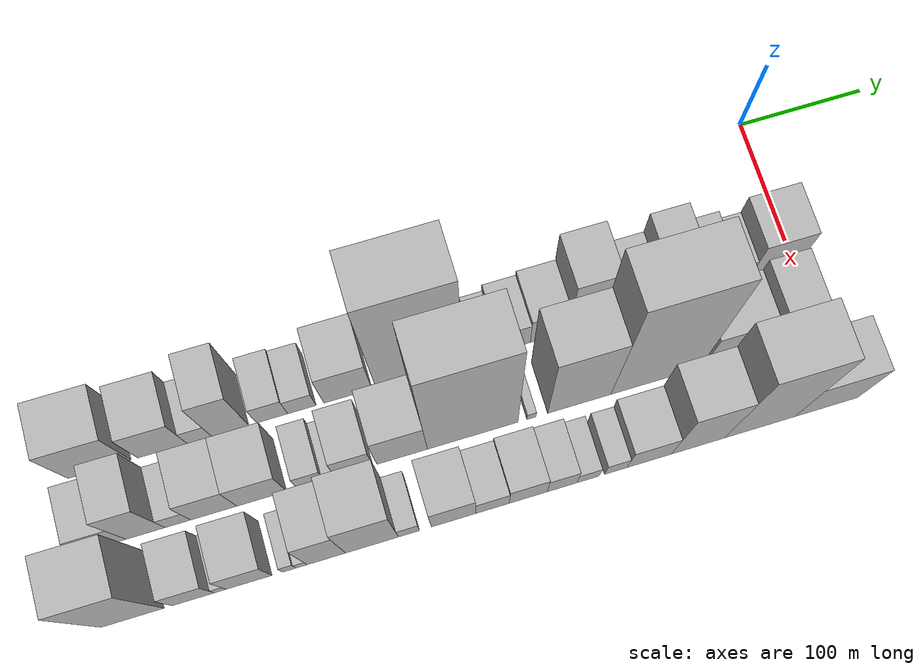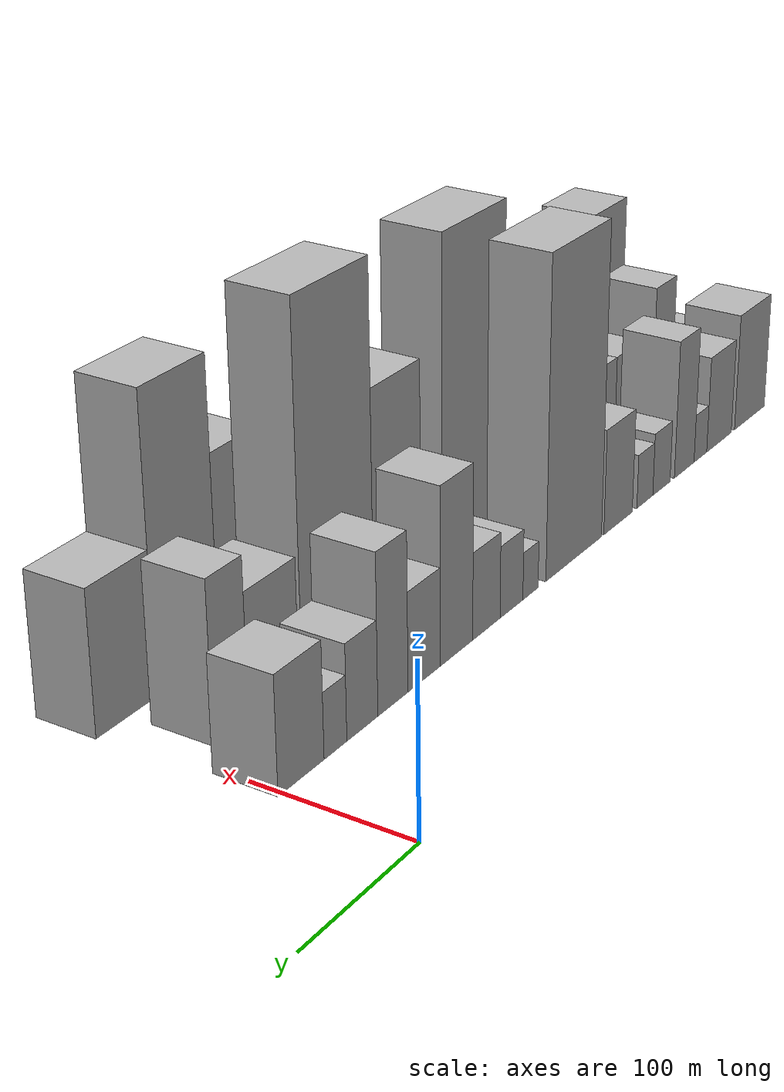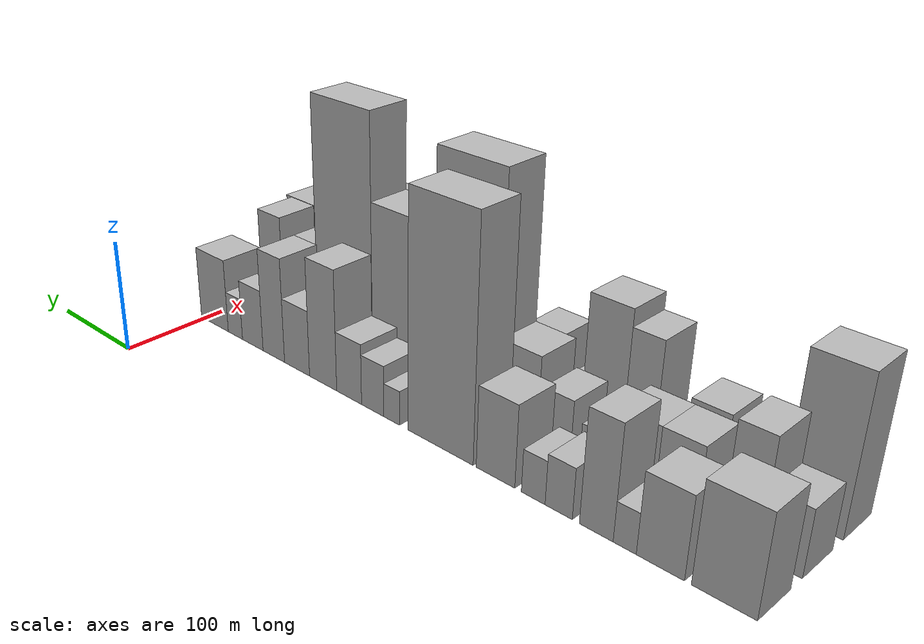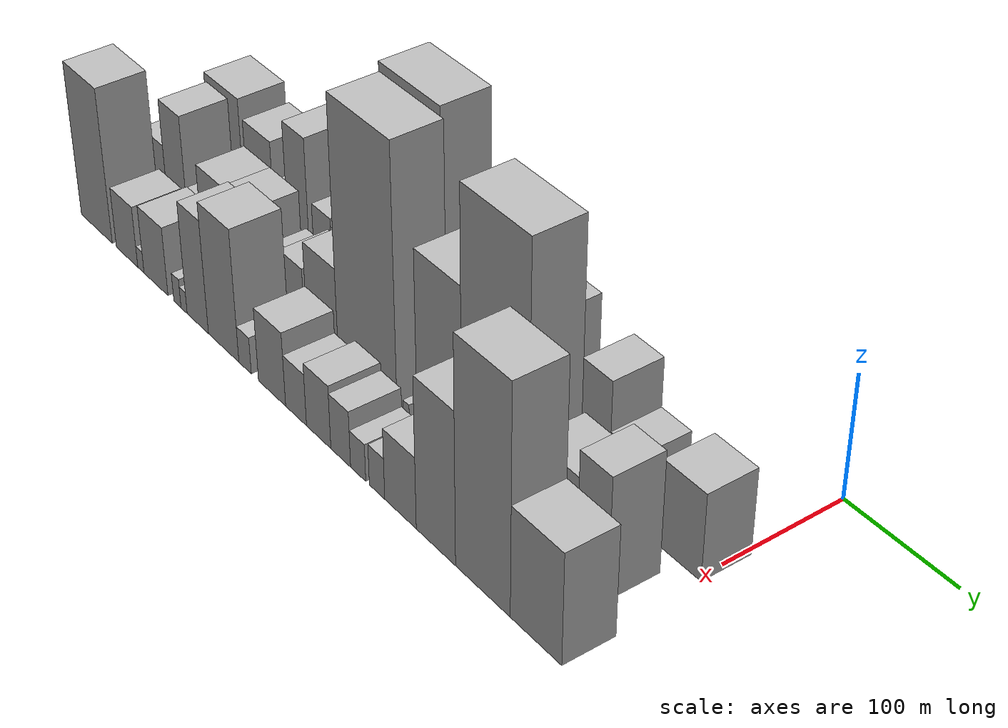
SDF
<sdf version="1.6">
 <world name="default">
  <model name="building_1">
   <static>1</static>
   <pose>100.0000 -536.6929 0 0.000000 0.000000 0.000000</pose>
   <link name="link">
    <pose>0 0 40.50 0 0 0</pose>
    <collision name="collision"><geometry><box><size>40.0000 46.6141 81.0000</size></box></geometry></collision>
    <visual name="visual">
     <cast_shadows>0</cast_shadows>
     <geometry><box><size>40.0000 46.6141 81.0000</size></box></geometry>
     <material>
      <script>
       <uri>model://HANNAS_wall/materials/scripts</uri>
       <uri>model://HANNAS_wall/materials/textures</uri>
       <name>vrc/HANNAS_wall</name>
      </script>
     </material>
    </visual>
   </link>
  </model>
  <model name="building_2">
   <static>1</static>
   <pose>100.0000 -490.0142 0 0.000000 0.000000 0.000000</pose>
   <link name="link">
    <pose>0 0 33.00 0 0 0</pose>
    <collision name="collision"><geometry><box><size>40.0000 36.7435 66.0000</size></box></geometry></collision>
    <visual name="visual">
     <cast_shadows>0</cast_shadows>
     <geometry><box><size>40.0000 36.7435 66.0000</size></box></geometry>
     <material>
      <script>
       <uri>model://HANNAS_wall/materials/scripts</uri>
       <uri>model://HANNAS_wall/materials/textures</uri>
       <name>vrc/HANNAS_wall</name>
      </script>
     </material>
    </visual>
   </link>
  </model>
  <model name="building_3">
   <static>1</static>
   <pose>100.0000 -462.4300 0 0.000000 0.000000 0.000000</pose>
   <link name="link">
    <pose>0 0 16.50 0 0 0</pose>
    <collision name="collision"><geometry><box><size>40.0000 18.4248 33.0000</size></box></geometry></collision>
    <visual name="visual">
     <cast_shadows>0</cast_shadows>
     <geometry><box><size>40.0000 18.4248 33.0000</size></box></geometry>
     <material>
      <script>
       <uri>model://HANNAS_wall/materials/scripts</uri>
       <uri>model://HANNAS_wall/materials/textures</uri>
       <name>vrc/HANNAS_wall</name>
      </script>
     </material>
    </visual>
   </link>
  </model>
  <model name="building_4">
   <static>1</static>
   <pose>100.0000 -439.2274 0 0.000000 0.000000 0.000000</pose>
   <link name="link">
    <pose>0 0 46.50 0 0 0</pose>
    <collision name="collision"><geometry><box><size>40.0000 27.9805 93.0000</size></box></geometry></collision>
    <visual name="visual">
     <cast_shadows>0</cast_shadows>
     <geometry><box><size>40.0000 27.9805 93.0000</size></box></geometry>
     <material>
      <script>
       <uri>model://HANNAS_wall/materials/scripts</uri>
       <uri>model://HANNAS_wall/materials/textures</uri>
       <name>vrc/HANNAS_wall</name>
      </script>
     </material>
    </visual>
   </link>
  </model>
  <model name="building_5">
   <static>1</static>
   <pose>100.0000 -407.3929 0 0.000000 0.000000 0.000000</pose>
   <link name="link">
    <pose>0 0 21.00 0 0 0</pose>
    <collision name="collision"><geometry><box><size>40.0000 23.6884 42.0000</size></box></geometry></collision>
    <visual name="visual">
     <cast_shadows>0</cast_shadows>
     <geometry><box><size>40.0000 23.6884 42.0000</size></box></geometry>
     <material>
      <script>
       <uri>model://HANNAS_wall/materials/scripts</uri>
       <uri>model://HANNAS_wall/materials/textures</uri>
       <name>vrc/HANNAS_wall</name>
      </script>
     </material>
    </visual>
   </link>
  </model>
  <model name="building_6">
   <static>1</static>
   <pose>100.0000 -384.8416 0 0.000000 0.000000 0.000000</pose>
   <link name="link">
    <pose>0 0 18.00 0 0 0</pose>
    <collision name="collision"><geometry><box><size>40.0000 21.4141 36.0000</size></box></geometry></collision>
    <visual name="visual">
     <cast_shadows>0</cast_shadows>
     <geometry><box><size>40.0000 21.4141 36.0000</size></box></geometry>
     <material>
      <script>
       <uri>model://HANNAS_wall/materials/scripts</uri>
       <uri>model://HANNAS_wall/materials/textures</uri>
       <name>vrc/HANNAS_wall</name>
      </script>
     </material>
    </visual>
   </link>
  </model>
  <model name="building_7">
   <static>1</static>
   <pose>100.0000 -349.7798 0 0.000000 0.000000 0.000000</pose>
   <link name="link">
    <pose>0 0 34.50 0 0 0</pose>
    <collision name="collision"><geometry><box><size>40.0000 36.7094 69.0000</size></box></geometry></collision>
    <visual name="visual">
     <cast_shadows>0</cast_shadows>
     <geometry><box><size>40.0000 36.7094 69.0000</size></box></geometry>
     <material>
      <script>
       <uri>model://HANNAS_wall/materials/scripts</uri>
       <uri>model://HANNAS_wall/materials/textures</uri>
       <name>vrc/HANNAS_wall</name>
      </script>
     </material>
    </visual>
   </link>
  </model>
  <model name="building_8">
   <static>1</static>
   <pose>100.0000 -294.7436 0 0.000000 0.000000 0.000000</pose>
   <link name="link">
    <pose>0 0 100.50 0 0 0</pose>
    <collision name="collision"><geometry><box><size>40.0000 67.3630 201.0000</size></box></geometry></collision>
    <visual name="visual">
     <cast_shadows>0</cast_shadows>
     <geometry><box><size>40.0000 67.3630 201.0000</size></box></geometry>
     <material>
      <script>
       <uri>model://HANNAS_wall/materials/scripts</uri>
       <uri>model://HANNAS_wall/materials/textures</uri>
       <name>vrc/HANNAS_wall</name>
      </script>
     </material>
    </visual>
   </link>
  </model>
  <model name="building_9">
   <static>1</static>
   <pose>100.0000 -243.3653 0 0.000000 0.000000 0.000000</pose>
   <link name="link">
    <pose>0 0 15.00 0 0 0</pose>
    <collision name="collision"><geometry><box><size>40.0000 17.3937 30.0000</size></box></geometry></collision>
    <visual name="visual">
     <cast_shadows>0</cast_shadows>
     <geometry><box><size>40.0000 17.3937 30.0000</size></box></geometry>
     <material>
      <script>
       <uri>model://HANNAS_wall/materials/scripts</uri>
       <uri>model://HANNAS_wall/materials/textures</uri>
       <name>vrc/HANNAS_wall</name>
      </script>
     </material>
    </visual>
   </link>
  </model>
  <model name="building_10">
   <static>1</static>
   <pose>100.0000 -221.9480 0 0.000000 0.000000 0.000000</pose>
   <link name="link">
    <pose>0 0 22.50 0 0 0</pose>
    <collision name="collision"><geometry><box><size>40.0000 25.4409 45.0000</size></box></geometry></collision>
    <visual name="visual">
     <cast_shadows>0</cast_shadows>
     <geometry><box><size>40.0000 25.4409 45.0000</size></box></geometry>
     <material>
      <script>
       <uri>model://HANNAS_wall/materials/scripts</uri>
       <uri>model://HANNAS_wall/materials/textures</uri>
       <name>vrc/HANNAS_wall</name>
      </script>
     </material>
    </visual>
   </link>
  </model>
  <model name="building_11">
   <static>1</static>
   <pose>100.0000 -194.4827 0 0.000000 0.000000 0.000000</pose>
   <link name="link">
    <pose>0 0 27.00 0 0 0</pose>
    <collision name="collision"><geometry><box><size>40.0000 29.4895 54.0000</size></box></geometry></collision>
    <visual name="visual">
     <cast_shadows>0</cast_shadows>
     <geometry><box><size>40.0000 29.4895 54.0000</size></box></geometry>
     <material>
      <script>
       <uri>model://HANNAS_wall/materials/scripts</uri>
       <uri>model://HANNAS_wall/materials/textures</uri>
       <name>vrc/HANNAS_wall</name>
      </script>
     </material>
    </visual>
   </link>
  </model>
  <model name="building_12">
   <static>1</static>
   <pose>100.0000 -162.9726 0 0.000000 0.000000 0.000000</pose>
   <link name="link">
    <pose>0 0 54.00 0 0 0</pose>
    <collision name="collision"><geometry><box><size>40.0000 33.5308 108.0000</size></box></geometry></collision>
    <visual name="visual">
     <cast_shadows>0</cast_shadows>
     <geometry><box><size>40.0000 33.5308 108.0000</size></box></geometry>
     <material>
      <script>
       <uri>model://HANNAS_wall/materials/scripts</uri>
       <uri>model://HANNAS_wall/materials/textures</uri>
       <name>vrc/HANNAS_wall</name>
      </script>
     </material>
    </visual>
   </link>
  </model>
  <model name="building_13">
   <static>1</static>
   <pose>100.0000 -130.0925 0 0.000000 0.000000 0.000000</pose>
   <link name="link">
    <pose>0 0 30.00 0 0 0</pose>
    <collision name="collision"><geometry><box><size>40.0000 32.2293 60.0000</size></box></geometry></collision>
    <visual name="visual">
     <cast_shadows>0</cast_shadows>
     <geometry><box><size>40.0000 32.2293 60.0000</size></box></geometry>
     <material>
      <script>
       <uri>model://HANNAS_wall/materials/scripts</uri>
       <uri>model://HANNAS_wall/materials/textures</uri>
       <name>vrc/HANNAS_wall</name>
      </script>
     </material>
    </visual>
   </link>
  </model>
  <model name="building_14">
   <static>1</static>
   <pose>100.0000 -99.5629 0 0.000000 0.000000 0.000000</pose>
   <link name="link">
    <pose>0 0 48.00 0 0 0</pose>
    <collision name="collision"><geometry><box><size>40.0000 28.8300 96.0000</size></box></geometry></collision>
    <visual name="visual">
     <cast_shadows>0</cast_shadows>
     <geometry><box><size>40.0000 28.8300 96.0000</size></box></geometry>
     <material>
      <script>
       <uri>model://HANNAS_wall/materials/scripts</uri>
       <uri>model://HANNAS_wall/materials/textures</uri>
       <name>vrc/HANNAS_wall</name>
      </script>
     </material>
    </visual>
   </link>
  </model>
  <model name="building_15">
   <static>1</static>
   <pose>100.0000 -70.8435 0 0.000000 0.000000 0.000000</pose>
   <link name="link">
    <pose>0 0 28.50 0 0 0</pose>
    <collision name="collision"><geometry><box><size>40.0000 28.6087 57.0000</size></box></geometry></collision>
    <visual name="visual">
     <cast_shadows>0</cast_shadows>
     <geometry><box><size>40.0000 28.6087 57.0000</size></box></geometry>
     <material>
      <script>
       <uri>model://HANNAS_wall/materials/scripts</uri>
       <uri>model://HANNAS_wall/materials/textures</uri>
       <name>vrc/HANNAS_wall</name>
      </script>
     </material>
    </visual>
   </link>
  </model>
  <model name="building_16">
   <static>1</static>
   <pose>100.0000 -46.3662 0 0.000000 0.000000 0.000000</pose>
   <link name="link">
    <pose>0 0 19.50 0 0 0</pose>
    <collision name="collision"><geometry><box><size>40.0000 20.3460 39.0000</size></box></geometry></collision>
    <visual name="visual">
     <cast_shadows>0</cast_shadows>
     <geometry><box><size>40.0000 20.3460 39.0000</size></box></geometry>
     <material>
      <script>
       <uri>model://HANNAS_wall/materials/scripts</uri>
       <uri>model://HANNAS_wall/materials/textures</uri>
       <name>vrc/HANNAS_wall</name>
      </script>
     </material>
    </visual>
   </link>
  </model>
  <model name="building_17">
   <static>1</static>
   <pose>100.0000 -16.3731 0 0.000000 0.000000 0.000000</pose>
   <link name="link">
    <pose>0 0 34.50 0 0 0</pose>
    <collision name="collision"><geometry><box><size>40.0000 39.6402 69.0000</size></box></geometry></collision>
    <visual name="visual">
     <cast_shadows>0</cast_shadows>
     <geometry><box><size>40.0000 39.6402 69.0000</size></box></geometry>
     <material>
      <script>
       <uri>model://HANNAS_wall/materials/scripts</uri>
       <uri>model://HANNAS_wall/materials/textures</uri>
       <name>vrc/HANNAS_wall</name>
      </script>
     </material>
    </visual>
   </link>
  </model>
  <model name="building_34">
   <static>1</static>
   <pose>155.0000 -544.6800 0 0.000000 0.000000 0.000000</pose>
   <link name="link">
    <pose>0 0 27.00 0 0 0</pose>
    <collision name="collision"><geometry><box><size>40.0000 30.6399 54.0000</size></box></geometry></collision>
    <visual name="visual">
     <cast_shadows>0</cast_shadows>
     <geometry><box><size>40.0000 30.6399 54.0000</size></box></geometry>
     <material>
      <script>
       <uri>model://HANNAS_wall/materials/scripts</uri>
       <uri>model://HANNAS_wall/materials/textures</uri>
       <name>vrc/HANNAS_wall</name>
      </script>
     </material>
    </visual>
   </link>
  </model>
  <model name="building_35">
   <static>1</static>
   <pose>155.0000 -515.0606 0 0.000000 0.000000 0.000000</pose>
   <link name="link">
    <pose>0 0 46.50 0 0 0</pose>
    <collision name="collision"><geometry><box><size>40.0000 28.5989 93.0000</size></box></geometry></collision>
    <visual name="visual">
     <cast_shadows>0</cast_shadows>
     <geometry><box><size>40.0000 28.5989 93.0000</size></box></geometry>
     <material>
      <script>
       <uri>model://HANNAS_wall/materials/scripts</uri>
       <uri>model://HANNAS_wall/materials/textures</uri>
       <name>vrc/HANNAS_wall</name>
      </script>
     </material>
    </visual>
   </link>
  </model>
  <model name="building_36">
   <static>1</static>
   <pose>155.0000 -491.3935 0 0.000000 0.000000 0.000000</pose>
   <link name="link">
    <pose>0 0 16.50 0 0 0</pose>
    <collision name="collision"><geometry><box><size>40.0000 18.7354 33.0000</size></box></geometry></collision>
    <visual name="visual">
     <cast_shadows>0</cast_shadows>
     <geometry><box><size>40.0000 18.7354 33.0000</size></box></geometry>
     <material>
      <script>
       <uri>model://HANNAS_wall/materials/scripts</uri>
       <uri>model://HANNAS_wall/materials/textures</uri>
       <name>vrc/HANNAS_wall</name>
      </script>
     </material>
    </visual>
   </link>
  </model>
  <model name="building_37">
   <static>1</static>
   <pose>155.0000 -464.8806 0 0.000000 0.000000 0.000000</pose>
   <link name="link">
    <pose>0 0 31.50 0 0 0</pose>
    <collision name="collision"><geometry><box><size>40.0000 34.2904 63.0000</size></box></geometry></collision>
    <visual name="visual">
     <cast_shadows>0</cast_shadows>
     <geometry><box><size>40.0000 34.2904 63.0000</size></box></geometry>
     <material>
      <script>
       <uri>model://HANNAS_wall/materials/scripts</uri>
       <uri>model://HANNAS_wall/materials/textures</uri>
       <name>vrc/HANNAS_wall</name>
      </script>
     </material>
    </visual>
   </link>
  </model>
  <model name="building_38">
   <static>1</static>
   <pose>155.0000 -429.2984 0 0.000000 0.000000 0.000000</pose>
   <link name="link">
    <pose>0 0 31.50 0 0 0</pose>
    <collision name="collision"><geometry><box><size>40.0000 36.8740 63.0000</size></box></geometry></collision>
    <visual name="visual">
     <cast_shadows>0</cast_shadows>
     <geometry><box><size>40.0000 36.8740 63.0000</size></box></geometry>
     <material>
      <script>
       <uri>model://HANNAS_wall/materials/scripts</uri>
       <uri>model://HANNAS_wall/materials/textures</uri>
       <name>vrc/HANNAS_wall</name>
      </script>
     </material>
    </visual>
   </link>
  </model>
  <model name="building_39">
   <static>1</static>
   <pose>155.0000 -392.8713 0 0.000000 0.000000 0.000000</pose>
   <link name="link">
    <pose>0 0 18.00 0 0 0</pose>
    <collision name="collision"><geometry><box><size>40.0000 19.9801 36.0000</size></box></geometry></collision>
    <visual name="visual">
     <cast_shadows>0</cast_shadows>
     <geometry><box><size>40.0000 19.9801 36.0000</size></box></geometry>
     <material>
      <script>
       <uri>model://HANNAS_wall/materials/scripts</uri>
       <uri>model://HANNAS_wall/materials/textures</uri>
       <name>vrc/HANNAS_wall</name>
      </script>
     </material>
    </visual>
   </link>
  </model>
  <model name="building_40">
   <static>1</static>
   <pose>155.0000 -378.7012 0 0.000000 0.000000 0.000000</pose>
   <link name="link">
    <pose>0 0 9.00 0 0 0</pose>
    <collision name="collision"><geometry><box><size>40.0000 8.3601 18.0000</size></box></geometry></collision>
    <visual name="visual">
     <cast_shadows>0</cast_shadows>
     <geometry><box><size>40.0000 8.3601 18.0000</size></box></geometry>
     <material>
      <script>
       <uri>model://HANNAS_wall/materials/scripts</uri>
       <uri>model://HANNAS_wall/materials/textures</uri>
       <name>vrc/HANNAS_wall</name>
      </script>
     </material>
    </visual>
   </link>
  </model>
  <model name="building_41">
   <static>1</static>
   <pose>155.0000 -360.3299 0 0.000000 0.000000 0.000000</pose>
   <link name="link">
    <pose>0 0 25.50 0 0 0</pose>
    <collision name="collision"><geometry><box><size>40.0000 28.3825 51.0000</size></box></geometry></collision>
    <visual name="visual">
     <cast_shadows>0</cast_shadows>
     <geometry><box><size>40.0000 28.3825 51.0000</size></box></geometry>
     <material>
      <script>
       <uri>model://HANNAS_wall/materials/scripts</uri>
       <uri>model://HANNAS_wall/materials/textures</uri>
       <name>vrc/HANNAS_wall</name>
      </script>
     </material>
    </visual>
   </link>
  </model>
  <model name="building_42">
   <static>1</static>
   <pose>155.0000 -324.0040 0 0.000000 0.000000 0.000000</pose>
   <link name="link">
    <pose>0 0 37.50 0 0 0</pose>
    <collision name="collision"><geometry><box><size>40.0000 38.2692 75.0000</size></box></geometry></collision>
    <visual name="visual">
     <cast_shadows>0</cast_shadows>
     <geometry><box><size>40.0000 38.2692 75.0000</size></box></geometry>
     <material>
      <script>
       <uri>model://HANNAS_wall/materials/scripts</uri>
       <uri>model://HANNAS_wall/materials/textures</uri>
       <name>vrc/HANNAS_wall</name>
      </script>
     </material>
    </visual>
   </link>
  </model>
  <model name="building_43">
   <static>1</static>
   <pose>155.0000 -270.3994 0 0.000000 0.000000 0.000000</pose>
   <link name="link">
    <pose>0 0 105.00 0 0 0</pose>
    <collision name="collision"><geometry><box><size>40.0000 68.9399 210.0000</size></box></geometry></collision>
    <visual name="visual">
     <cast_shadows>0</cast_shadows>
     <geometry><box><size>40.0000 68.9399 210.0000</size></box></geometry>
     <material>
      <script>
       <uri>model://HANNAS_wall/materials/scripts</uri>
       <uri>model://HANNAS_wall/materials/textures</uri>
       <name>vrc/HANNAS_wall</name>
      </script>
     </material>
    </visual>
   </link>
  </model>
  <model name="building_44">
   <static>1</static>
   <pose>155.0000 -225.4750 0 0.000000 0.000000 0.000000</pose>
   <link name="link">
    <pose>0 0 7.50 0 0 0</pose>
    <collision name="collision"><geometry><box><size>40.0000 6.9090 15.0000</size></box></geometry></collision>
    <visual name="visual">
     <cast_shadows>0</cast_shadows>
     <geometry><box><size>40.0000 6.9090 15.0000</size></box></geometry>
     <material>
      <script>
       <uri>model://HANNAS_wall/materials/scripts</uri>
       <uri>model://HANNAS_wall/materials/textures</uri>
       <name>vrc/HANNAS_wall</name>
      </script>
     </material>
    </visual>
   </link>
  </model>
  <model name="building_45">
   <static>1</static>
   <pose>155.0000 -188.6110 0 0.000000 0.000000 0.000000</pose>
   <link name="link">
    <pose>0 0 72.00 0 0 0</pose>
    <collision name="collision"><geometry><box><size>40.0000 48.8191 144.0000</size></box></geometry></collision>
    <visual name="visual">
     <cast_shadows>0</cast_shadows>
     <geometry><box><size>40.0000 48.8191 144.0000</size></box></geometry>
     <material>
      <script>
       <uri>model://HANNAS_wall/materials/scripts</uri>
       <uri>model://HANNAS_wall/materials/textures</uri>
       <name>vrc/HANNAS_wall</name>
      </script>
     </material>
    </visual>
   </link>
  </model>
  <model name="building_46">
   <static>1</static>
   <pose>155.0000 -129.6218 0 0.000000 0.000000 0.000000</pose>
   <link name="link">
    <pose>0 0 109.50 0 0 0</pose>
    <collision name="collision"><geometry><box><size>40.0000 69.1592 219.0000</size></box></geometry></collision>
    <visual name="visual">
     <cast_shadows>0</cast_shadows>
     <geometry><box><size>40.0000 69.1592 219.0000</size></box></geometry>
     <material>
      <script>
       <uri>model://HANNAS_wall/materials/scripts</uri>
       <uri>model://HANNAS_wall/materials/textures</uri>
       <name>vrc/HANNAS_wall</name>
      </script>
     </material>
    </visual>
   </link>
  </model>
  <model name="building_47">
   <static>1</static>
   <pose>155.0000 -69.5526 0 0.000000 0.000000 0.000000</pose>
   <link name="link">
    <pose>0 0 37.50 0 0 0</pose>
    <collision name="collision"><geometry><box><size>40.0000 44.9793 75.0000</size></box></geometry></collision>
    <visual name="visual">
     <cast_shadows>0</cast_shadows>
     <geometry><box><size>40.0000 44.9793 75.0000</size></box></geometry>
     <material>
      <script>
       <uri>model://HANNAS_wall/materials/scripts</uri>
       <uri>model://HANNAS_wall/materials/textures</uri>
       <name>vrc/HANNAS_wall</name>
      </script>
     </material>
    </visual>
   </link>
  </model>
  <model name="building_48">
   <static>1</static>
   <pose>155.0000 -32.0475 0 0.000000 0.000000 0.000000</pose>
   <link name="link">
    <pose>0 0 48.00 0 0 0</pose>
    <collision name="collision"><geometry><box><size>40.0000 30.0308 96.0000</size></box></geometry></collision>
    <visual name="visual">
     <cast_shadows>0</cast_shadows>
     <geometry><box><size>40.0000 30.0308 96.0000</size></box></geometry>
     <material>
      <script>
       <uri>model://HANNAS_wall/materials/scripts</uri>
       <uri>model://HANNAS_wall/materials/textures</uri>
       <name>vrc/HANNAS_wall</name>
      </script>
     </material>
    </visual>
   </link>
  </model>
  <model name="building_67">
   <static>1</static>
   <pose>210.0000 -537.2338 0 0.000000 0.000000 0.000000</pose>
   <link name="link">
    <pose>0 0 64.50 0 0 0</pose>
    <collision name="collision"><geometry><box><size>40.0000 45.5325 129.0000</size></box></geometry></collision>
    <visual name="visual">
     <cast_shadows>0</cast_shadows>
     <geometry><box><size>40.0000 45.5325 129.0000</size></box></geometry>
     <material>
      <script>
       <uri>model://HANNAS_wall/materials/scripts</uri>
       <uri>model://HANNAS_wall/materials/textures</uri>
       <name>vrc/HANNAS_wall</name>
      </script>
     </material>
    </visual>
   </link>
  </model>
  <model name="building_68">
   <static>1</static>
   <pose>210.0000 -493.1877 0 0.000000 0.000000 0.000000</pose>
   <link name="link">
    <pose>0 0 25.50 0 0 0</pose>
    <collision name="collision"><geometry><box><size>40.0000 30.5596 51.0000</size></box></geometry></collision>
    <visual name="visual">
     <cast_shadows>0</cast_shadows>
     <geometry><box><size>40.0000 30.5596 51.0000</size></box></geometry>
     <material>
      <script>
       <uri>model://HANNAS_wall/materials/scripts</uri>
       <uri>model://HANNAS_wall/materials/textures</uri>
       <name>vrc/HANNAS_wall</name>
      </script>
     </material>
    </visual>
   </link>
  </model>
  <model name="building_69">
   <static>1</static>
   <pose>210.0000 -473.5033 0 0.000000 0.000000 0.000000</pose>
   <link name="link">
    <pose>0 0 9.00 0 0 0</pose>
    <collision name="collision"><geometry><box><size>40.0000 8.8093 18.0000</size></box></geometry></collision>
    <visual name="visual">
     <cast_shadows>0</cast_shadows>
     <geometry><box><size>40.0000 8.8093 18.0000</size></box></geometry>
     <material>
      <script>
       <uri>model://HANNAS_wall/materials/scripts</uri>
       <uri>model://HANNAS_wall/materials/textures</uri>
       <name>vrc/HANNAS_wall</name>
      </script>
     </material>
    </visual>
   </link>
  </model>
  <model name="building_70">
   <static>1</static>
   <pose>210.0000 -452.4995 0 0.000000 0.000000 0.000000</pose>
   <link name="link">
    <pose>0 0 28.50 0 0 0</pose>
    <collision name="collision"><geometry><box><size>40.0000 33.1982 57.0000</size></box></geometry></collision>
    <visual name="visual">
     <cast_shadows>0</cast_shadows>
     <geometry><box><size>40.0000 33.1982 57.0000</size></box></geometry>
     <material>
      <script>
       <uri>model://HANNAS_wall/materials/scripts</uri>
       <uri>model://HANNAS_wall/materials/textures</uri>
       <name>vrc/HANNAS_wall</name>
      </script>
     </material>
    </visual>
   </link>
  </model>
  <model name="building_71">
   <static>1</static>
   <pose>210.0000 -423.0534 0 0.000000 0.000000 0.000000</pose>
   <link name="link">
    <pose>0 0 12.00 0 0 0</pose>
    <collision name="collision"><geometry><box><size>40.0000 9.6939 24.0000</size></box></geometry></collision>
    <visual name="visual">
     <cast_shadows>0</cast_shadows>
     <geometry><box><size>40.0000 9.6939 24.0000</size></box></geometry>
     <material>
      <script>
       <uri>model://HANNAS_wall/materials/scripts</uri>
       <uri>model://HANNAS_wall/materials/textures</uri>
       <name>vrc/HANNAS_wall</name>
      </script>
     </material>
    </visual>
   </link>
  </model>
  <model name="building_72">
   <static>1</static>
   <pose>210.0000 -414.0908 0 0.000000 0.000000 0.000000</pose>
   <link name="link">
    <pose>0 0 9.00 0 0 0</pose>
    <collision name="collision"><geometry><box><size>40.0000 8.2314 18.0000</size></box></geometry></collision>
    <visual name="visual">
     <cast_shadows>0</cast_shadows>
     <geometry><box><size>40.0000 8.2314 18.0000</size></box></geometry>
     <material>
      <script>
       <uri>model://HANNAS_wall/materials/scripts</uri>
       <uri>model://HANNAS_wall/materials/textures</uri>
       <name>vrc/HANNAS_wall</name>
      </script>
     </material>
    </visual>
   </link>
  </model>
  <model name="building_73">
   <static>1</static>
   <pose>210.0000 -395.8452 0 0.000000 0.000000 0.000000</pose>
   <link name="link">
    <pose>0 0 46.50 0 0 0</pose>
    <collision name="collision"><geometry><box><size>40.0000 28.2597 93.0000</size></box></geometry></collision>
    <visual name="visual">
     <cast_shadows>0</cast_shadows>
     <geometry><box><size>40.0000 28.2597 93.0000</size></box></geometry>
     <material>
      <script>
       <uri>model://HANNAS_wall/materials/scripts</uri>
       <uri>model://HANNAS_wall/materials/textures</uri>
       <name>vrc/HANNAS_wall</name>
      </script>
     </material>
    </visual>
   </link>
  </model>
  <model name="building_74">
   <static>1</static>
   <pose>210.0000 -362.0733 0 0.000000 0.000000 0.000000</pose>
   <link name="link">
    <pose>0 0 54.00 0 0 0</pose>
    <collision name="collision"><geometry><box><size>40.0000 39.2841 108.0000</size></box></geometry></collision>
    <visual name="visual">
     <cast_shadows>0</cast_shadows>
     <geometry><box><size>40.0000 39.2841 108.0000</size></box></geometry>
     <material>
      <script>
       <uri>model://HANNAS_wall/materials/scripts</uri>
       <uri>model://HANNAS_wall/materials/textures</uri>
       <name>vrc/HANNAS_wall</name>
      </script>
     </material>
    </visual>
   </link>
  </model>
  <model name="building_75">
   <static>1</static>
   <pose>210.0000 -334.6125 0 0.000000 0.000000 0.000000</pose>
   <link name="link">
    <pose>0 0 15.00 0 0 0</pose>
    <collision name="collision"><geometry><box><size>40.0000 15.6375 30.0000</size></box></geometry></collision>
    <visual name="visual">
     <cast_shadows>0</cast_shadows>
     <geometry><box><size>40.0000 15.6375 30.0000</size></box></geometry>
     <material>
      <script>
       <uri>model://HANNAS_wall/materials/scripts</uri>
       <uri>model://HANNAS_wall/materials/textures</uri>
       <name>vrc/HANNAS_wall</name>
      </script>
     </material>
    </visual>
   </link>
  </model>
  <model name="building_76">
   <static>1</static>
   <pose>210.0000 -301.1250 0 0.000000 0.000000 0.000000</pose>
   <link name="link">
    <pose>0 0 30.00 0 0 0</pose>
    <collision name="collision"><geometry><box><size>40.0000 33.3375 60.0000</size></box></geometry></collision>
    <visual name="visual">
     <cast_shadows>0</cast_shadows>
     <geometry><box><size>40.0000 33.3375 60.0000</size></box></geometry>
     <material>
      <script>
       <uri>model://HANNAS_wall/materials/scripts</uri>
       <uri>model://HANNAS_wall/materials/textures</uri>
       <name>vrc/HANNAS_wall</name>
      </script>
     </material>
    </visual>
   </link>
  </model>
  <model name="building_77">
   <static>1</static>
   <pose>210.0000 -271.9601 0 0.000000 0.000000 0.000000</pose>
   <link name="link">
    <pose>0 0 21.00 0 0 0</pose>
    <collision name="collision"><geometry><box><size>40.0000 24.9923 42.0000</size></box></geometry></collision>
    <visual name="visual">
     <cast_shadows>0</cast_shadows>
     <geometry><box><size>40.0000 24.9923 42.0000</size></box></geometry>
     <material>
      <script>
       <uri>model://HANNAS_wall/materials/scripts</uri>
       <uri>model://HANNAS_wall/materials/textures</uri>
       <name>vrc/HANNAS_wall</name>
      </script>
     </material>
    </visual>
   </link>
  </model>
  <model name="building_78">
   <static>1</static>
   <pose>210.0000 -245.1800 0 0.000000 0.000000 0.000000</pose>
   <link name="link">
    <pose>0 0 25.50 0 0 0</pose>
    <collision name="collision"><geometry><box><size>40.0000 28.5679 51.0000</size></box></geometry></collision>
    <visual name="visual">
     <cast_shadows>0</cast_shadows>
     <geometry><box><size>40.0000 28.5679 51.0000</size></box></geometry>
     <material>
      <script>
       <uri>model://HANNAS_wall/materials/scripts</uri>
       <uri>model://HANNAS_wall/materials/textures</uri>
       <name>vrc/HANNAS_wall</name>
      </script>
     </material>
    </visual>
   </link>
  </model>
  <model name="building_79">
   <static>1</static>
   <pose>210.0000 -219.5943 0 0.000000 0.000000 0.000000</pose>
   <link name="link">
    <pose>0 0 22.50 0 0 0</pose>
    <collision name="collision"><geometry><box><size>40.0000 22.6035 45.0000</size></box></geometry></collision>
    <visual name="visual">
     <cast_shadows>0</cast_shadows>
     <geometry><box><size>40.0000 22.6035 45.0000</size></box></geometry>
     <material>
      <script>
       <uri>model://HANNAS_wall/materials/scripts</uri>
       <uri>model://HANNAS_wall/materials/textures</uri>
       <name>vrc/HANNAS_wall</name>
      </script>
     </material>
    </visual>
   </link>
  </model>
  <model name="building_80">
   <static>1</static>
   <pose>210.0000 -199.7600 0 0.000000 0.000000 0.000000</pose>
   <link name="link">
    <pose>0 0 15.00 0 0 0</pose>
    <collision name="collision"><geometry><box><size>40.0000 17.0651 30.0000</size></box></geometry></collision>
    <visual name="visual">
     <cast_shadows>0</cast_shadows>
     <geometry><box><size>40.0000 17.0651 30.0000</size></box></geometry>
     <material>
      <script>
       <uri>model://HANNAS_wall/materials/scripts</uri>
       <uri>model://HANNAS_wall/materials/textures</uri>
       <name>vrc/HANNAS_wall</name>
      </script>
     </material>
    </visual>
   </link>
  </model>
  <model name="building_81">
   <static>1</static>
   <pose>210.0000 -178.7009 0 0.000000 0.000000 0.000000</pose>
   <link name="link">
    <pose>0 0 16.50 0 0 0</pose>
    <collision name="collision"><geometry><box><size>40.0000 17.0532 33.0000</size></box></geometry></collision>
    <visual name="visual">
     <cast_shadows>0</cast_shadows>
     <geometry><box><size>40.0000 17.0532 33.0000</size></box></geometry>
     <material>
      <script>
       <uri>model://HANNAS_wall/materials/scripts</uri>
       <uri>model://HANNAS_wall/materials/textures</uri>
       <name>vrc/HANNAS_wall</name>
      </script>
     </material>
    </visual>
   </link>
  </model>
  <model name="building_82">
   <static>1</static>
   <pose>210.0000 -153.1122 0 0.000000 0.000000 0.000000</pose>
   <link name="link">
    <pose>0 0 28.50 0 0 0</pose>
    <collision name="collision"><geometry><box><size>40.0000 34.1241 57.0000</size></box></geometry></collision>
    <visual name="visual">
     <cast_shadows>0</cast_shadows>
     <geometry><box><size>40.0000 34.1241 57.0000</size></box></geometry>
     <material>
      <script>
       <uri>model://HANNAS_wall/materials/scripts</uri>
       <uri>model://HANNAS_wall/materials/textures</uri>
       <name>vrc/HANNAS_wall</name>
      </script>
     </material>
    </visual>
   </link>
  </model>
  <model name="building_83">
   <static>1</static>
   <pose>210.0000 -115.4934 0 0.000000 0.000000 0.000000</pose>
   <link name="link">
    <pose>0 0 60.00 0 0 0</pose>
    <collision name="collision"><geometry><box><size>40.0000 41.1135 120.0000</size></box></geometry></collision>
    <visual name="visual">
     <cast_shadows>0</cast_shadows>
     <geometry><box><size>40.0000 41.1135 120.0000</size></box></geometry>
     <material>
      <script>
       <uri>model://HANNAS_wall/materials/scripts</uri>
       <uri>model://HANNAS_wall/materials/textures</uri>
       <name>vrc/HANNAS_wall</name>
      </script>
     </material>
    </visual>
   </link>
  </model>
  <model name="building_84">
   <static>1</static>
   <pose>210.0000 -67.5174 0 0.000000 0.000000 0.000000</pose>
   <link name="link">
    <pose>0 0 88.50 0 0 0</pose>
    <collision name="collision"><geometry><box><size>40.0000 54.8387 177.0000</size></box></geometry></collision>
    <visual name="visual">
     <cast_shadows>0</cast_shadows>
     <geometry><box><size>40.0000 54.8387 177.0000</size></box></geometry>
     <material>
      <script>
       <uri>model://HANNAS_wall/materials/scripts</uri>
       <uri>model://HANNAS_wall/materials/textures</uri>
       <name>vrc/HANNAS_wall</name>
      </script>
     </material>
    </visual>
   </link>
  </model>
  <model name="building_85">
   <static>1</static>
   <pose>210.0000 -15.4815 0 0.000000 0.000000 0.000000</pose>
   <link name="link">
    <pose>0 0 43.50 0 0 0</pose>
    <collision name="collision"><geometry><box><size>40.0000 49.2331 87.0000</size></box></geometry></collision>
    <visual name="visual">
     <cast_shadows>0</cast_shadows>
     <geometry><box><size>40.0000 49.2331 87.0000</size></box></geometry>
     <material>
      <script>
       <uri>model://HANNAS_wall/materials/scripts</uri>
       <uri>model://HANNAS_wall/materials/textures</uri>
       <name>vrc/HANNAS_wall</name>
      </script>
     </material>
    </visual>
   </link>
  </model>
 </world>
</sdf>
